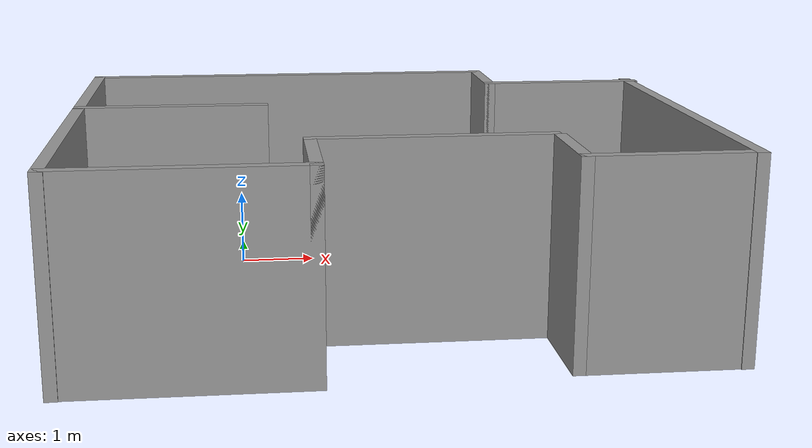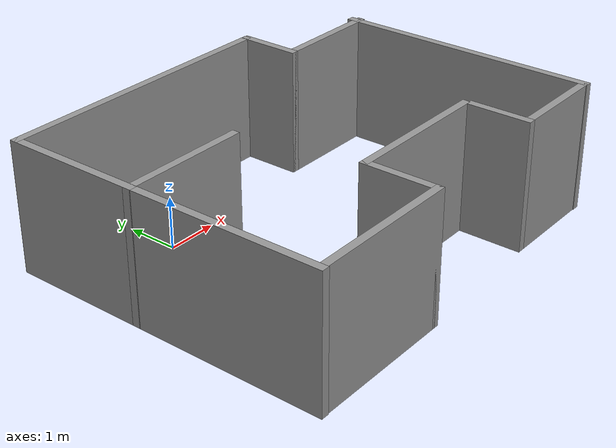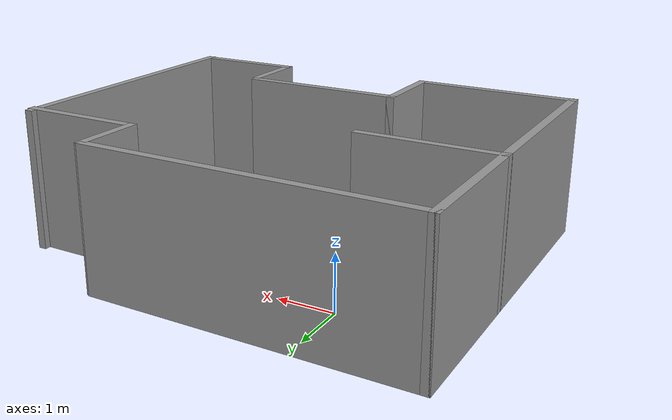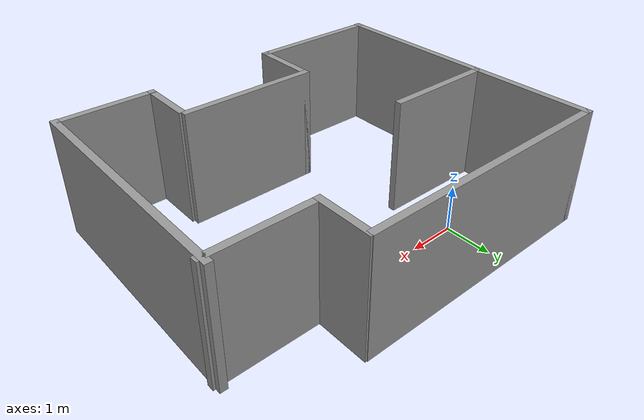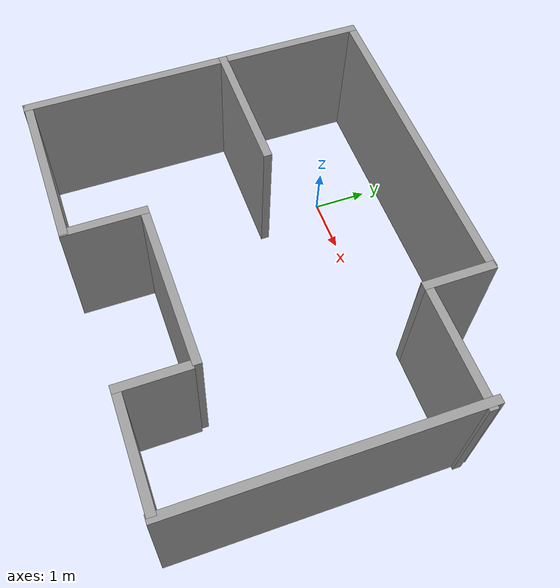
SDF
<?xml version='1.0'?>
<sdf version='1.7'>
  <model name='Map'>
    <pose>1.8198 -1.79071 0 0 -0 0</pose>
    <link name='Wall_0'>
      <collision name='Wall_0_Collision'>
        <geometry>
          <box>
            <size>2.72624 0.15 2.5</size>
          </box>
        </geometry>
        <pose>0 0 1.25 0 -0 0</pose>
      </collision>
      <visual name='Wall_0_Visual'>
        <pose>0 0 1.25 0 -0 0</pose>
        <geometry>
          <box>
            <size>2.72624 0.15 2.5</size>
          </box>
        </geometry>
        <material>
          <script>
            <uri>file://media/materials/scripts/gazebo.material</uri>
            <name>Gazebo/Grey</name>
          </script>
          <ambient>1 1 1 1</ambient>
        </material>
        <meta>
          <layer>0</layer>
        </meta>
      </visual>
      <pose>-3.87048 1.82496 0 0 -0 1.5708</pose>
    </link>
    <link name='Wall_17'>
      <collision name='Wall_17_Collision'>
        <geometry>
          <box>
            <size>1.99692 0.15 2.5</size>
          </box>
        </geometry>
        <pose>0 0 1.25 0 -0 0</pose>
      </collision>
      <visual name='Wall_17_Visual'>
        <pose>0 0 1.25 0 -0 0</pose>
        <geometry>
          <box>
            <size>1.99692 0.15 2.5</size>
          </box>
        </geometry>
        <material>
          <script>
            <uri>file://media/materials/scripts/gazebo.material</uri>
            <name>Gazebo/Grey</name>
          </script>
          <ambient>1 1 1 1</ambient>
        </material>
        <meta>
          <layer>0</layer>
        </meta>
      </visual>
      <pose>2.81595 -2.97692 0 0 -0 3.14159</pose>
    </link>
    <link name='Wall_23'>
      <collision name='Wall_23_Collision'>
        <geometry>
          <box>
            <size>2.5 0.15 2.5</size>
          </box>
        </geometry>
        <pose>0 0 1.25 0 -0 0</pose>
      </collision>
      <visual name='Wall_23_Visual'>
        <pose>0 0 1.25 0 -0 0</pose>
        <geometry>
          <box>
            <size>2.5 0.15 2.5</size>
          </box>
        </geometry>
        <material>
          <script>
            <uri>file://media/materials/scripts/gazebo.material</uri>
            <name>Gazebo/Grey</name>
          </script>
          <ambient>1 1 1 1</ambient>
        </material>
        <meta>
          <layer>0</layer>
        </meta>
      </visual>
      <pose>-2.69548 0.552042 0 0 -0 0</pose>
    </link>
    <link name='Wall_25'>
      <collision name='Wall_25_Collision'>
        <geometry>
          <box>
            <size>3.79991 0.15 2.5</size>
          </box>
        </geometry>
        <pose>0 0 1.25 0 -0 0</pose>
      </collision>
      <visual name='Wall_25_Visual'>
        <pose>0 0 1.25 0 -0 0</pose>
        <geometry>
          <box>
            <size>3.79991 0.15 2.5</size>
          </box>
        </geometry>
        <material>
          <script>
            <uri>file://media/materials/scripts/gazebo.material</uri>
            <name>Gazebo/Grey</name>
          </script>
          <ambient>1 1 1 1</ambient>
        </material>
        <meta>
          <layer>0</layer>
        </meta>
      </visual>
      <pose>-3.87048 -1.28812 0 0 -0 -1.5708</pose>
    </link>
    <link name='Wall_26'>
      <collision name='Wall_26_Collision'>
        <geometry>
          <box>
            <size>3 0.15 2.5</size>
          </box>
        </geometry>
        <pose>0 0 1.25 0 -0 0</pose>
      </collision>
      <visual name='Wall_26_Visual'>
        <pose>0 0 1.25 0 -0 0</pose>
        <geometry>
          <box>
            <size>3 0.15 2.5</size>
          </box>
        </geometry>
        <material>
          <script>
            <uri>file://media/materials/scripts/gazebo.material</uri>
            <name>Gazebo/Grey</name>
          </script>
          <ambient>1 1 1 1</ambient>
        </material>
        <meta>
          <layer>0</layer>
        </meta>
      </visual>
      <pose>-2.44548 -3.1 0 0 -0 0</pose>
    </link>
    <link name='Wall_34'>
      <collision name='Wall_34_Collision'>
        <geometry>
          <box>
            <size>1.5 0.15 2.5</size>
          </box>
        </geometry>
        <pose>0 0 1.25 0 -0 0</pose>
      </collision>
      <visual name='Wall_34_Visual'>
        <pose>0 0 1.25 0 -0 0</pose>
        <geometry>
          <box>
            <size>1.5 0.15 2.5</size>
          </box>
        </geometry>
        <material>
          <script>
            <uri>file://media/materials/scripts/gazebo.material</uri>
            <name>Gazebo/Grey</name>
          </script>
          <ambient>1 1 1 1</ambient>
        </material>
        <meta>
          <layer>0</layer>
        </meta>
      </visual>
      <pose>-1.02048 -2.425 0 0 -0 1.5708</pose>
    </link>
    <link name='Wall_35'>
      <collision name='Wall_35_Collision'>
        <geometry>
          <box>
            <size>3 0.15 2.5</size>
          </box>
        </geometry>
        <pose>0 0 1.25 0 -0 0</pose>
      </collision>
      <visual name='Wall_35_Visual'>
        <pose>0 0 1.25 0 -0 0</pose>
        <geometry>
          <box>
            <size>3 0.15 2.5</size>
          </box>
        </geometry>
        <material>
          <script>
            <uri>file://media/materials/scripts/gazebo.material</uri>
            <name>Gazebo/Grey</name>
          </script>
          <ambient>1 1 1 1</ambient>
        </material>
        <meta>
          <layer>0</layer>
        </meta>
      </visual>
      <pose>0.404525 -1.75 0 0 -0 0</pose>
    </link>
    <link name='Wall_37'>
      <collision name='Wall_37_Collision'>
        <geometry>
          <box>
            <size>1.25 0.15 2.5</size>
          </box>
        </geometry>
        <pose>0 0 1.25 0 -0 0</pose>
      </collision>
      <visual name='Wall_37_Visual'>
        <pose>0 0 1.25 0 -0 0</pose>
        <geometry>
          <box>
            <size>1.25 0.15 2.5</size>
          </box>
        </geometry>
        <material>
          <script>
            <uri>file://media/materials/scripts/gazebo.material</uri>
            <name>Gazebo/Grey</name>
          </script>
          <ambient>1 1 1 1</ambient>
        </material>
        <meta>
          <layer>0</layer>
        </meta>
      </visual>
      <pose>1.87941 -2.42692 0 0 -0 1.5708</pose>
    </link>
    <link name='Wall_40'>
      <collision name='Wall_40_Collision'>
        <geometry>
          <box>
            <size>1.25 0.15 2.5</size>
          </box>
        </geometry>
        <pose>0 0 1.25 0 -0 0</pose>
      </collision>
      <visual name='Wall_40_Visual'>
        <pose>0 0 1.25 0 -0 0</pose>
        <geometry>
          <box>
            <size>1.25 0.15 2.5</size>
          </box>
        </geometry>
        <material>
          <script>
            <uri>file://media/materials/scripts/gazebo.material</uri>
            <name>Gazebo/Grey</name>
          </script>
          <ambient>1 1 1 1</ambient>
        </material>
        <meta>
          <layer>0</layer>
        </meta>
      </visual>
      <pose>1.77048 2.54997 0 0 -0 -1.5708</pose>
    </link>
    <link name='Wall_43'>
      <collision name='Wall_43_Collision'>
        <geometry>
          <box>
            <size>5.75 0.15 2.5</size>
          </box>
        </geometry>
        <pose>0 0 1.25 0 -0 0</pose>
      </collision>
      <visual name='Wall_43_Visual'>
        <pose>0 0 1.25 0 -0 0</pose>
        <geometry>
          <box>
            <size>5.75 0.15 2.5</size>
          </box>
        </geometry>
        <material>
          <script>
            <uri>file://media/materials/scripts/gazebo.material</uri>
            <name>Gazebo/Grey</name>
          </script>
          <ambient>1 1 1 1</ambient>
        </material>
        <meta>
          <layer>0</layer>
        </meta>
      </visual>
      <pose>-1.07048 3.11308 0 0 -0 0</pose>
    </link>
    <link name='Wall_45'>
      <collision name='Wall_45_Collision'>
        <geometry>
          <box>
            <size>5.25 0.15 2.5</size>
          </box>
        </geometry>
        <pose>0 0 1.25 0 -0 0</pose>
      </collision>
      <visual name='Wall_45_Visual'>
        <pose>0 0 1.25 0 -0 0</pose>
        <geometry>
          <box>
            <size>5.25 0.15 2.5</size>
          </box>
        </geometry>
        <material>
          <script>
            <uri>file://media/materials/scripts/gazebo.material</uri>
            <name>Gazebo/Grey</name>
          </script>
          <ambient>1 1 1 1</ambient>
        </material>
        <meta>
          <layer>0</layer>
        </meta>
      </visual>
      <pose>3.82048 -0.44003 0 0 -0 -1.5708</pose>
    </link>
    <link name='Wall_47'>
      <collision name='Wall_47_Collision'>
        <geometry>
          <box>
            <size>2.25 0.15 2.5</size>
          </box>
        </geometry>
        <pose>0 0 1.25 0 -0 0</pose>
      </collision>
      <visual name='Wall_47_Visual'>
        <pose>0 0 1.25 0 -0 0</pose>
        <geometry>
          <box>
            <size>2.25 0.15 2.5</size>
          </box>
        </geometry>
        <material>
          <script>
            <uri>file://media/materials/scripts/gazebo.material</uri>
            <name>Gazebo/Grey</name>
          </script>
          <ambient>1 1 1 1</ambient>
        </material>
        <meta>
          <layer>0</layer>
        </meta>
      </visual>
      <pose>2.82048 1.99997 0 0 -0 0</pose>
    </link>
    <static>1</static>
  </model>
</sdf>
